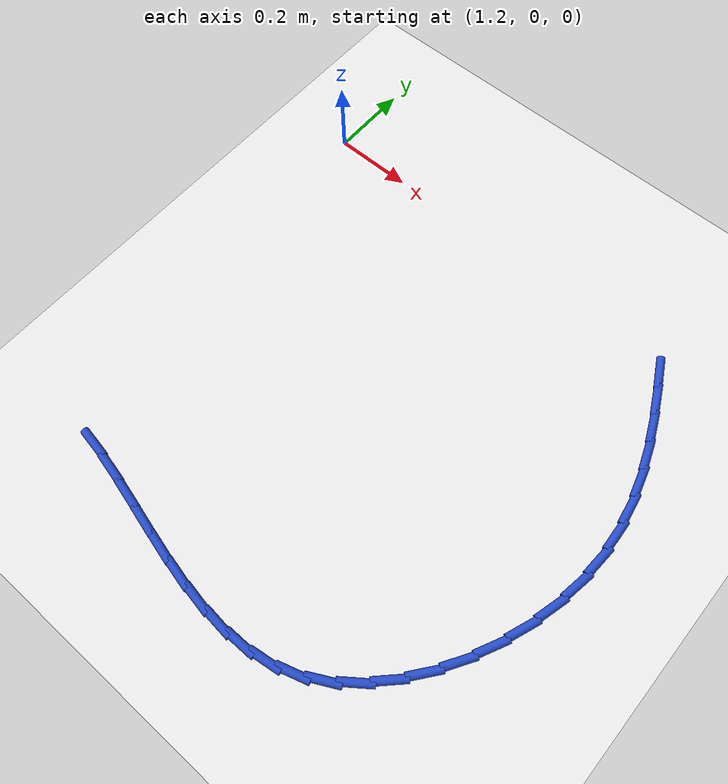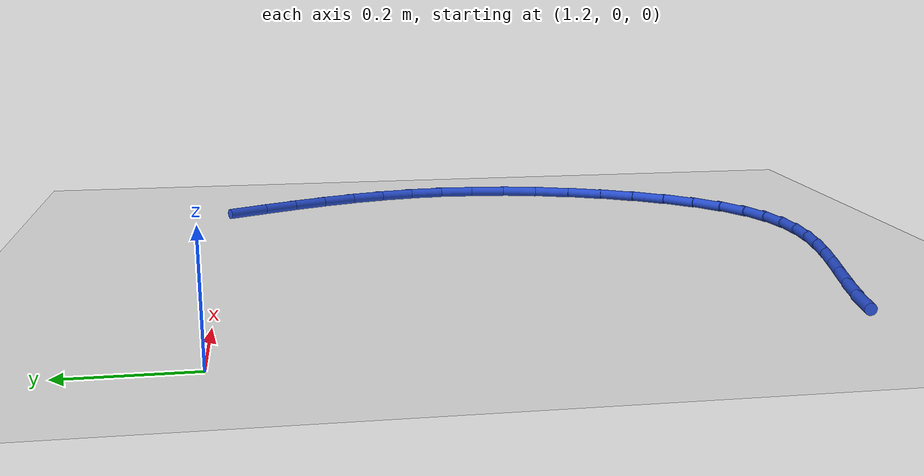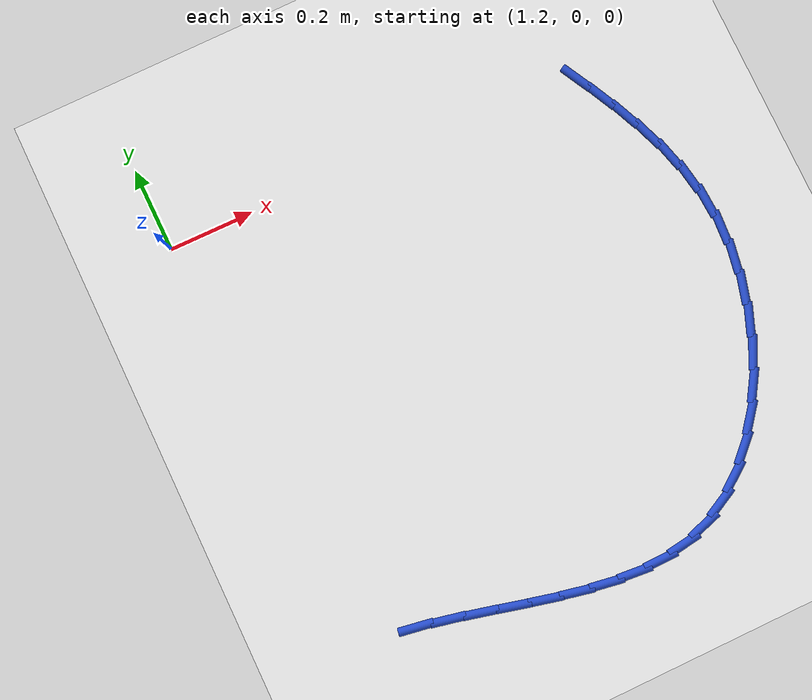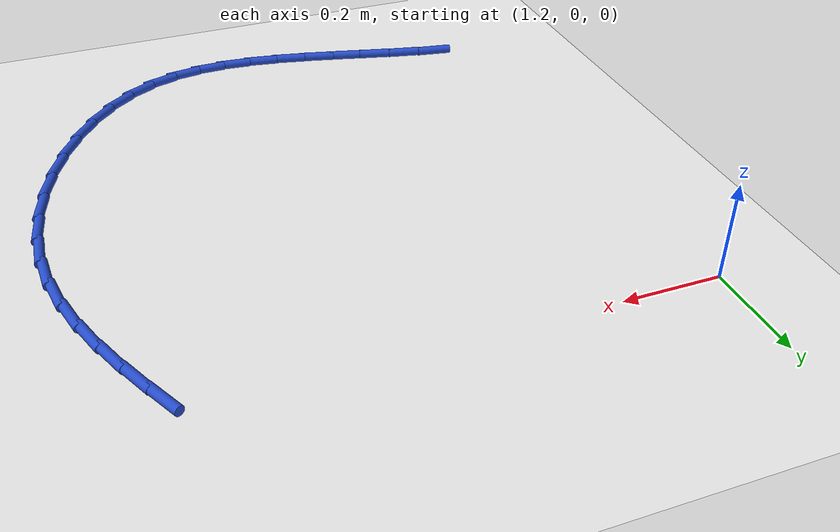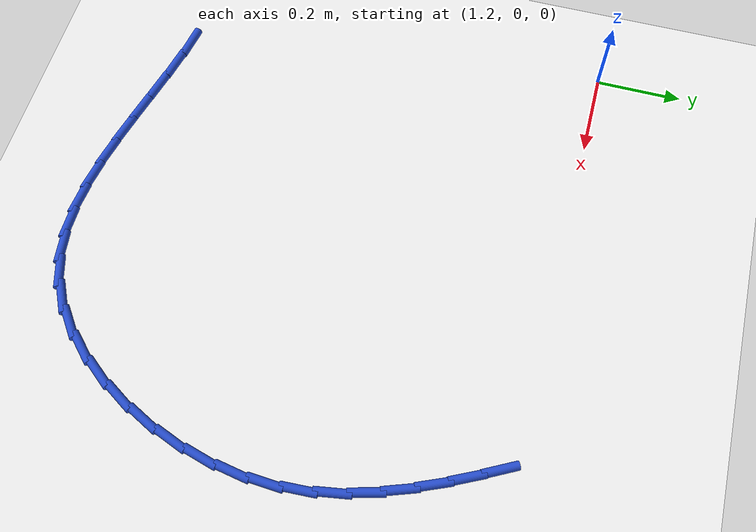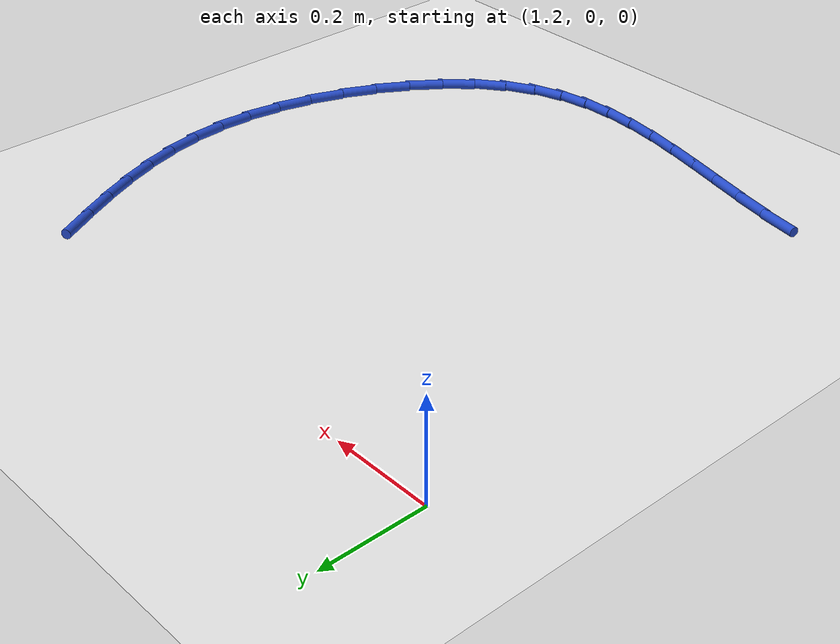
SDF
<sdf version="1.6">
 <world name="default">
  <model name="ground_plane">
   <static>1</static>
   <link name="link">
    <collision name="collision">
     <geometry><plane><normal>0 0 1</normal><size>100 100</size></plane></geometry>
     <surface><friction><ode><mu>100</mu><mu2>50</mu2></ode></friction></surface>
    </collision>
    <visual name="visual">
     <cast_shadows>0</cast_shadows>
     <geometry><plane><normal>0 0 1</normal><size>100 100</size></plane></geometry>
     <material>
      <script><uri>file://media/materials/scripts/gazebo.material</uri><name>Gazebo/WhiteGlow</name></script>
     </material>
    </visual>
   </link>
  </model>
  <model name="line">
   <link name="link_55">
    <pose>2.2014249448889043 -0.0365330212295575 0.01 0 1.57 -1.0869482660415042</pose>
    <collision name="collision">
     <geometry><cylinder><radius>0.01</radius><length>0.08</length></cylinder></geometry>
    </collision>
    <visual name="visual">
     <material>
      <script><name>Gazebo/Blue</name><uri>file://media/materials/scripts/gazebo.material</uri></script>
     </material>
     <geometry><cylinder><radius>0.01</radius><length>0.08</length></cylinder></geometry>
    </visual>
   </link>
   <link name="link_56">
    <pose>2.2336228451303564 -0.09780263653297357 0.01 0 1.57 -1.117916506763499</pose>
    <collision name="collision">
     <geometry><cylinder><radius>0.01</radius><length>0.08</length></cylinder></geometry>
    </collision>
    <visual name="visual">
     <material>
      <script><name>Gazebo/Blue</name><uri>file://media/materials/scripts/gazebo.material</uri></script>
     </material>
     <geometry><cylinder><radius>0.01</radius><length>0.08</length></cylinder></geometry>
    </visual>
   </link>
   <link name="link_57">
    <pose>2.2637848114173242 -0.1597862641841002 0.01 0 1.57 -1.165351894229711</pose>
    <collision name="collision">
     <geometry><cylinder><radius>0.01</radius><length>0.08</length></cylinder></geometry>
    </collision>
    <visual name="visual">
     <material>
      <script><name>Gazebo/Blue</name><uri>file://media/materials/scripts/gazebo.material</uri></script>
     </material>
     <geometry><cylinder><radius>0.01</radius><length>0.08</length></cylinder></geometry>
    </visual>
   </link>
   <link name="link_58">
    <pose>2.2908090023376233 -0.22274658699730152 0.01 0 1.57 -1.2297615501443147</pose>
    <collision name="collision">
     <geometry><cylinder><radius>0.01</radius><length>0.08</length></cylinder></geometry>
    </collision>
    <visual name="visual">
     <material>
      <script><name>Gazebo/Blue</name><uri>file://media/materials/scripts/gazebo.material</uri></script>
     </material>
     <geometry><cylinder><radius>0.01</radius><length>0.08</length></cylinder></geometry>
    </visual>
   </link>
   <link name="link_59">
    <pose>2.3135935764790663 -0.28694628778694486 0.01 0 1.57 -1.3112934402322223</pose>
    <collision name="collision">
     <geometry><cylinder><radius>0.01</radius><length>0.08</length></cylinder></geometry>
    </collision>
    <visual name="visual">
     <material>
      <script><name>Gazebo/Blue</name><uri>file://media/materials/scripts/gazebo.material</uri></script>
     </material>
     <geometry><cylinder><radius>0.01</radius><length>0.08</length></cylinder></geometry>
    </visual>
   </link>
   <link name="link_60">
    <pose>2.331036692429469 -0.3526480493673945 0.01 0 1.57 -1.4091772431177885</pose>
    <collision name="collision">
     <geometry><cylinder><radius>0.01</radius><length>0.08</length></cylinder></geometry>
    </collision>
    <visual name="visual">
     <material>
      <script><name>Gazebo/Blue</name><uri>file://media/materials/scripts/gazebo.material</uri></script>
     </material>
     <geometry><cylinder><radius>0.01</radius><length>0.08</length></cylinder></geometry>
    </visual>
   </link>
   <link name="link_61">
    <pose>2.3420365087766446 -0.42011455455301755 0.01 0 1.57 -1.521101940942076</pose>
    <collision name="collision">
     <geometry><cylinder><radius>0.01</radius><length>0.08</length></cylinder></geometry>
    </collision>
    <visual name="visual">
     <material>
      <script><name>Gazebo/Blue</name><uri>file://media/materials/scripts/gazebo.material</uri></script>
     </material>
     <geometry><cylinder><radius>0.01</radius><length>0.08</length></cylinder></geometry>
    </visual>
   </link>
   <link name="link_62">
    <pose>2.345492736803803 -0.4896069612067539 0.01 0 1.57 1.5043660627050166</pose>
    <collision name="collision">
     <geometry><cylinder><radius>0.01</radius><length>0.08</length></cylinder></geometry>
    </collision>
    <visual name="visual">
     <material>
      <script><name>Gazebo/Blue</name><uri>file://media/materials/scripts/gazebo.material</uri></script>
     </material>
     <geometry><cylinder><radius>0.01</radius><length>0.08</length></cylinder></geometry>
    </visual>
   </link>
   <link name="link_63">
    <pose>2.3407462035854345 -0.5609531933737976 0.01 0 1.57 1.3980563394773127</pose>
    <collision name="collision">
     <geometry><cylinder><radius>0.01</radius><length>0.08</length></cylinder></geometry>
    </collision>
    <visual name="visual">
     <material>
      <script><name>Gazebo/Blue</name><uri>file://media/materials/scripts/gazebo.material</uri></script>
     </material>
     <geometry><cylinder><radius>0.01</radius><length>0.08</length></cylinder></geometry>
    </visual>
   </link>
   <link name="link_64">
    <pose>2.3281835802232007 -0.6329540184896246 0.01 0 1.57 1.2994215784850003</pose>
    <collision name="collision">
     <geometry><cylinder><radius>0.01</radius><length>0.08</length></cylinder></geometry>
    </collision>
    <visual name="visual">
     <material>
      <script><name>Gazebo/Blue</name><uri>file://media/materials/scripts/gazebo.material</uri></script>
     </material>
     <geometry><cylinder><radius>0.01</radius><length>0.08</length></cylinder></geometry>
    </visual>
   </link>
   <link name="link_65">
    <pose>2.3083431242660186 -0.7042613261291555 0.01 0 1.57 1.2043850540183842</pose>
    <collision name="collision">
     <geometry><cylinder><radius>0.01</radius><length>0.08</length></cylinder></geometry>
    </collision>
    <visual name="visual">
     <material>
      <script><name>Gazebo/Blue</name><uri>file://media/materials/scripts/gazebo.material</uri></script>
     </material>
     <geometry><cylinder><radius>0.01</radius><length>0.08</length></cylinder></geometry>
    </visual>
   </link>
   <link name="link_66">
    <pose>2.281763093262808 -0.7735270058673104 0.01 0 1.57 1.1090525522357741</pose>
    <collision name="collision">
     <geometry><cylinder><radius>0.01</radius><length>0.08</length></cylinder></geometry>
    </collision>
    <visual name="visual">
     <material>
      <script><name>Gazebo/Blue</name><uri>file://media/materials/scripts/gazebo.material</uri></script>
     </material>
     <geometry><cylinder><radius>0.01</radius><length>0.08</length></cylinder></geometry>
    </visual>
   </link>
   <link name="link_67">
    <pose>2.2489817447624874 -0.8394029472790075 0.01 0 1.57 1.0094599993804385</pose>
    <collision name="collision">
     <geometry><cylinder><radius>0.01</radius><length>0.08</length></cylinder></geometry>
    </collision>
    <visual name="visual">
     <material>
      <script><name>Gazebo/Blue</name><uri>file://media/materials/scripts/gazebo.material</uri></script>
     </material>
     <geometry><cylinder><radius>0.01</radius><length>0.08</length></cylinder></geometry>
    </visual>
   </link>
   <link name="link_68">
    <pose>2.2105373363139753 -0.900541039939168 0.01 0 1.57 0.9013106922802813</pose>
    <collision name="collision">
     <geometry><cylinder><radius>0.01</radius><length>0.08</length></cylinder></geometry>
    </collision>
    <visual name="visual">
     <material>
      <script><name>Gazebo/Blue</name><uri>file://media/materials/scripts/gazebo.material</uri></script>
     </material>
     <geometry><cylinder><radius>0.01</radius><length>0.08</length></cylinder></geometry>
    </visual>
   </link>
   <link name="link_69">
    <pose>2.1669681254661906 -0.9555931734227096 0.01 0 1.57 0.7797840386858872</pose>
    <collision name="collision">
     <geometry><cylinder><radius>0.01</radius><length>0.08</length></cylinder></geometry>
    </collision>
    <visual name="visual">
     <material>
      <script><name>Gazebo/Blue</name><uri>file://media/materials/scripts/gazebo.material</uri></script>
     </material>
     <geometry><cylinder><radius>0.01</radius><length>0.08</length></cylinder></geometry>
    </visual>
   </link>
   <link name="link_70">
    <pose>2.1188123697680497 -1.0032112373045527 0.01 0 1.57 0.6396016490654894</pose>
    <collision name="collision">
     <geometry><cylinder><radius>0.01</radius><length>0.08</length></cylinder></geometry>
    </collision>
    <visual name="visual">
     <material>
      <script><name>Gazebo/Blue</name><uri>file://media/materials/scripts/gazebo.material</uri></script>
     </material>
     <geometry><cylinder><radius>0.01</radius><length>0.08</length></cylinder></geometry>
    </visual>
   </link>
   <link name="link_71">
    <pose>2.0666083267684736 -1.0420471211596167 0.01 0 1.57 0.475825678173238</pose>
    <collision name="collision">
     <geometry><cylinder><radius>0.01</radius><length>0.08</length></cylinder></geometry>
    </collision>
    <visual name="visual">
     <material>
      <script><name>Gazebo/Blue</name><uri>file://media/materials/scripts/gazebo.material</uri></script>
     </material>
     <geometry><cylinder><radius>0.01</radius><length>0.08</length></cylinder></geometry>
    </visual>
   </link>
   <link name="link_72">
    <pose>2.0108938703096384 -1.070757705822897 0.01 0 1.57 0.29832208939180543</pose>
    <collision name="collision">
     <geometry><cylinder><radius>0.01</radius><length>0.08</length></cylinder></geometry>
    </collision>
    <visual name="visual">
     <material>
      <script><name>Gazebo/Blue</name><uri>file://media/materials/scripts/gazebo.material</uri></script>
     </material>
     <geometry><cylinder><radius>0.01</radius><length>0.08</length></cylinder></geometry>
    </visual>
   </link>
   <link name="link_73">
    <pose>1.9521435688420672 -1.088823349121183 0.01 0 1.57 0.1396123583693693</pose>
    <collision name="collision">
     <geometry><cylinder><radius>0.01</radius><length>0.08</length></cylinder></geometry>
    </collision>
    <visual name="visual">
     <material>
      <script><name>Gazebo/Blue</name><uri>file://media/materials/scripts/gazebo.material</uri></script>
     </material>
     <geometry><cylinder><radius>0.01</radius><length>0.08</length></cylinder></geometry>
    </visual>
   </link>
   <link name="link_74">
    <pose>1.890698721028367 -1.0974579832449485 0.01 0 1.57 0.009979243395296242</pose>
    <collision name="collision">
     <geometry><cylinder><radius>0.01</radius><length>0.08</length></cylinder></geometry>
    </collision>
    <visual name="visual">
     <material>
      <script><name>Gazebo/Blue</name><uri>file://media/materials/scripts/gazebo.material</uri></script>
     </material>
     <geometry><cylinder><radius>0.01</radius><length>0.08</length></cylinder></geometry>
    </visual>
   </link>
   <link name="link_75">
    <pose>1.8268837675336063 -1.098094829338442 0.01 0 1.57 -0.08976216741388873</pose>
    <collision name="collision">
     <geometry><cylinder><radius>0.01</radius><length>0.08</length></cylinder></geometry>
    </collision>
    <visual name="visual">
     <material>
      <script><name>Gazebo/Blue</name><uri>file://media/materials/scripts/gazebo.material</uri></script>
     </material>
     <geometry><cylinder><radius>0.01</radius><length>0.08</length></cylinder></geometry>
    </visual>
   </link>
   <link name="link_76">
    <pose>1.7610231490228472 -1.0921671085459108 0.01 0 1.57 -0.16220199697117632</pose>
    <collision name="collision">
     <geometry><cylinder><radius>0.01</radius><length>0.08</length></cylinder></geometry>
    </collision>
    <visual name="visual">
     <material>
      <script><name>Gazebo/Blue</name><uri>file://media/materials/scripts/gazebo.material</uri></script>
     </material>
     <geometry><cylinder><radius>0.01</radius><length>0.08</length></cylinder></geometry>
    </visual>
   </link>
   <link name="link_77">
    <pose>1.6934413061611584 -1.0811080420116026 0.01 0 1.57 -0.21076143919984072</pose>
    <collision name="collision">
     <geometry><cylinder><radius>0.01</radius><length>0.08</length></cylinder></geometry>
    </collision>
    <visual name="visual">
     <material>
      <script><name>Gazebo/Blue</name><uri>file://media/materials/scripts/gazebo.material</uri></script>
     </material>
     <geometry><cylinder><radius>0.01</radius><length>0.08</length></cylinder></geometry>
    </visual>
   </link>
   <link name="link_78">
    <pose>1.624462679613604 -1.0663508508797648 0.01 0 1.57 -0.2383757317384162</pose>
    <collision name="collision">
     <geometry><cylinder><radius>0.01</radius><length>0.08</length></cylinder></geometry>
    </collision>
    <visual name="visual">
     <material>
      <script><name>Gazebo/Blue</name><uri>file://media/materials/scripts/gazebo.material</uri></script>
     </material>
     <geometry><cylinder><radius>0.01</radius><length>0.08</length></cylinder></geometry>
    </visual>
   </link>
   <link name="link_79">
    <pose>1.5544117100452508 -1.0493287562946456 0.01 0 1.57 -0.24702561976926704</pose>
    <collision name="collision">
     <geometry><cylinder><radius>0.01</radius><length>0.08</length></cylinder></geometry>
    </collision>
    <visual name="visual">
     <material>
      <script><name>Gazebo/Blue</name><uri>file://media/materials/scripts/gazebo.material</uri></script>
     </material>
     <geometry><cylinder><radius>0.01</radius><length>0.08</length></cylinder></geometry>
    </visual>
   </link>
   <link name="link_80">
    <pose>1.4836128381211622 -1.0314749794004918 0.01 0 1.57 -0.2376531508907132</pose>
    <collision name="collision">
     <geometry><cylinder><radius>0.01</radius><length>0.08</length></cylinder></geometry>
    </collision>
    <visual name="visual">
     <material>
      <script><name>Gazebo/Blue</name><uri>file://media/materials/scripts/gazebo.material</uri></script>
     </material>
     <geometry><cylinder><radius>0.01</radius><length>0.08</length></cylinder></geometry>
    </visual>
   </link>
   <link name="link_81">
    <pose>1.4123905045064067 -1.0142227413415519 0.01 0 1.57 -0.2102128377586859</pose>
    <collision name="collision">
     <geometry><cylinder><radius>0.01</radius><length>0.08</length></cylinder></geometry>
    </collision>
    <visual name="visual">
     <material>
      <script><name>Gazebo/Blue</name><uri>file://media/materials/scripts/gazebo.material</uri></script>
     </material>
     <geometry><cylinder><radius>0.01</radius><length>0.08</length></cylinder></geometry>
    </visual>
   </link>
   <link name="link_82">
    <pose>1.3410691498660485 -0.9990052632620736 0.01 0 1.57 -0.16417072959282328</pose>
    <collision name="collision">
     <geometry><cylinder><radius>0.01</radius><length>0.08</length></cylinder></geometry>
    </collision>
    <visual name="visual">
     <material>
      <script><name>Gazebo/Blue</name><uri>file://media/materials/scripts/gazebo.material</uri></script>
     </material>
     <geometry><cylinder><radius>0.01</radius><length>0.08</length></cylinder></geometry>
    </visual>
   </link>
  </model>
 </world>
</sdf>
